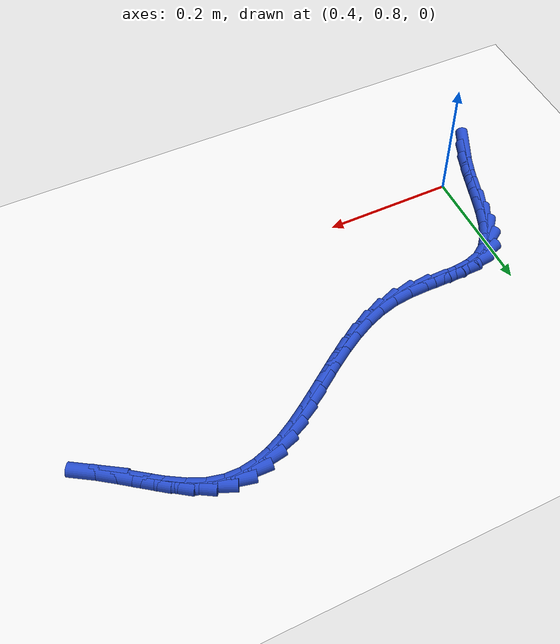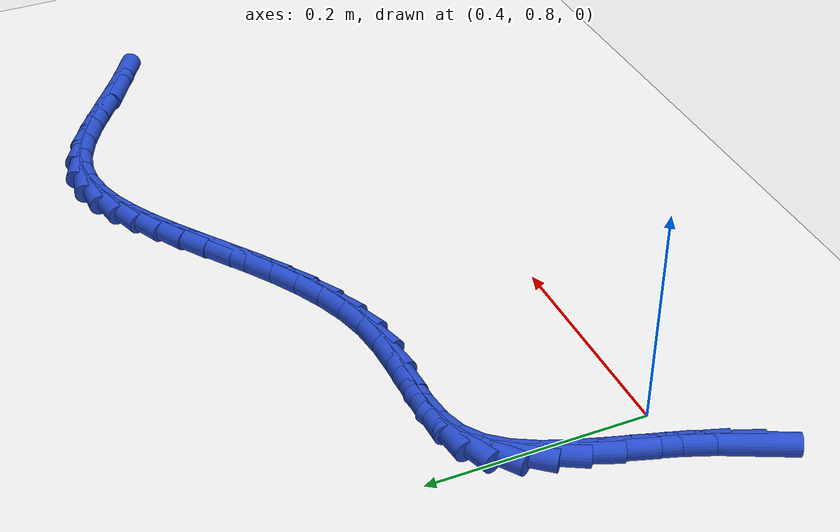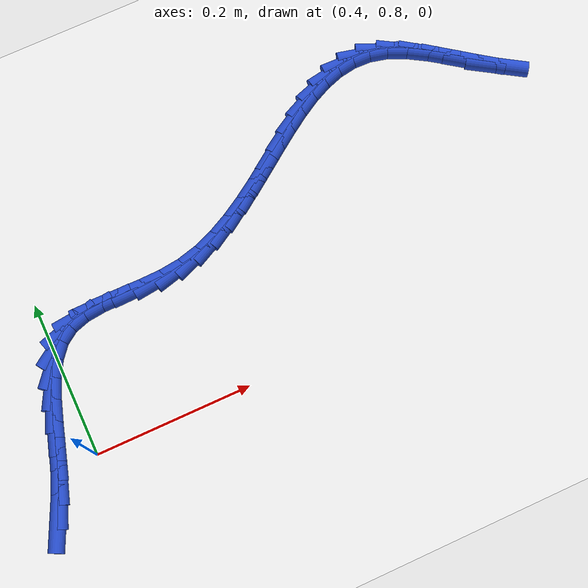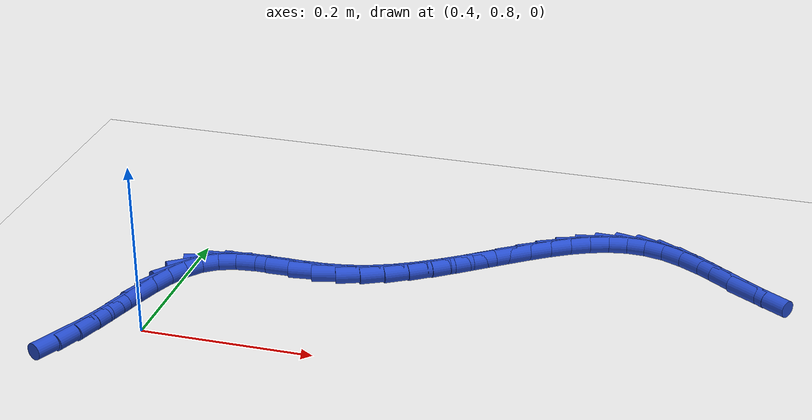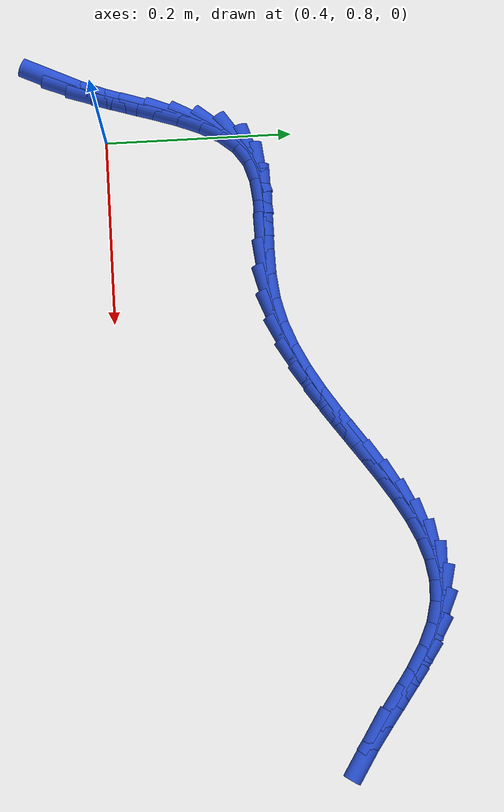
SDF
<sdf version="1.6">
 <world name="default">
  <model name="ground_plane">
   <static>1</static>
   <link name="link">
    <collision name="collision">
     <geometry><plane><normal>0 0 1</normal><size>100 100</size></plane></geometry>
     <surface><friction><ode><mu>100</mu><mu2>50</mu2></ode></friction></surface>
    </collision>
    <visual name="visual">
     <cast_shadows>0</cast_shadows>
     <geometry><plane><normal>0 0 1</normal><size>100 100</size></plane></geometry>
     <material>
      <script><uri>file://media/materials/scripts/gazebo.material</uri><name>Gazebo/WhiteGlow</name></script>
     </material>
    </visual>
   </link>
  </model>
  <model name="line">
   <link name="link_33">
    <pose>0.329873318205276 0.7486365363637981 0.01 0 1.57 1.1284688029731784</pose>
    <collision name="collision">
     <geometry><cylinder><radius>0.01</radius><length>0.08</length></cylinder></geometry>
    </collision>
    <visual name="visual">
     <material>
      <script><name>Gazebo/Blue</name><uri>file://media/materials/scripts/gazebo.material</uri></script>
     </material>
     <geometry><cylinder><radius>0.01</radius><length>0.08</length></cylinder></geometry>
    </visual>
   </link>
   <link name="link_34">
    <pose>0.3415156261085445 0.7732177090099589 0.01 0 1.57 1.197690654093386</pose>
    <collision name="collision">
     <geometry><cylinder><radius>0.01</radius><length>0.08</length></cylinder></geometry>
    </collision>
    <visual name="visual">
     <material>
      <script><name>Gazebo/Blue</name><uri>file://media/materials/scripts/gazebo.material</uri></script>
     </material>
     <geometry><cylinder><radius>0.01</radius><length>0.08</length></cylinder></geometry>
    </visual>
   </link>
   <link name="link_35">
    <pose>0.35171942012218216 0.7992850104737067 0.01 0 1.57 1.2533651907833483</pose>
    <collision name="collision">
     <geometry><cylinder><radius>0.01</radius><length>0.08</length></cylinder></geometry>
    </collision>
    <visual name="visual">
     <material>
      <script><name>Gazebo/Blue</name><uri>file://media/materials/scripts/gazebo.material</uri></script>
     </material>
     <geometry><cylinder><radius>0.01</radius><length>0.08</length></cylinder></geometry>
    </visual>
   </link>
   <link name="link_36">
    <pose>0.36067110237499256 0.826531796535264 0.01 0 1.57 1.2722899167853536</pose>
    <collision name="collision">
     <geometry><cylinder><radius>0.01</radius><length>0.08</length></cylinder></geometry>
    </collision>
    <visual name="visual">
     <material>
      <script><name>Gazebo/Blue</name><uri>file://media/materials/scripts/gazebo.material</uri></script>
     </material>
     <geometry><cylinder><radius>0.01</radius><length>0.08</length></cylinder></geometry>
    </visual>
   </link>
   <link name="link_37">
    <pose>0.3691043083008502 0.853938986598863 0.01 0 1.57 1.2536323393062092</pose>
    <collision name="collision">
     <geometry><cylinder><radius>0.01</radius><length>0.08</length></cylinder></geometry>
    </collision>
    <visual name="visual">
     <material>
      <script><name>Gazebo/Blue</name><uri>file://media/materials/scripts/gazebo.material</uri></script>
     </material>
     <geometry><cylinder><radius>0.01</radius><length>0.08</length></cylinder></geometry>
    </visual>
   </link>
   <link name="link_38">
    <pose>0.3777989475128677 0.8804272562782846 0.01 0 1.57 1.1924047636396597</pose>
    <collision name="collision">
     <geometry><cylinder><radius>0.01</radius><length>0.08</length></cylinder></geometry>
    </collision>
    <visual name="visual">
     <material>
      <script><name>Gazebo/Blue</name><uri>file://media/materials/scripts/gazebo.material</uri></script>
     </material>
     <geometry><cylinder><radius>0.01</radius><length>0.08</length></cylinder></geometry>
    </visual>
   </link>
   <link name="link_39">
    <pose>0.38753492962415753 0.9049172811873103 0.01 0 1.57 1.0758616461413353</pose>
    <collision name="collision">
     <geometry><cylinder><radius>0.01</radius><length>0.08</length></cylinder></geometry>
    </collision>
    <visual name="visual">
     <material>
      <script><name>Gazebo/Blue</name><uri>file://media/materials/scripts/gazebo.material</uri></script>
     </material>
     <geometry><cylinder><radius>0.01</radius><length>0.08</length></cylinder></geometry>
    </visual>
   </link>
   <link name="link_40">
    <pose>0.39909216424783245 0.9263297369397216 0.01 0 1.57 0.8836725762204143</pose>
    <collision name="collision">
     <geometry><cylinder><radius>0.01</radius><length>0.08</length></cylinder></geometry>
    </collision>
    <visual name="visual">
     <material>
      <script><name>Gazebo/Blue</name><uri>file://media/materials/scripts/gazebo.material</uri></script>
     </material>
     <geometry><cylinder><radius>0.01</radius><length>0.08</length></cylinder></geometry>
    </visual>
   </link>
   <link name="link_41">
    <pose>0.4132505609970051 0.9435852991492997 0.01 0 1.57 0.6012549065101921</pose>
    <collision name="collision">
     <geometry><cylinder><radius>0.01</radius><length>0.08</length></cylinder></geometry>
    </collision>
    <visual name="visual">
     <material>
      <script><name>Gazebo/Blue</name><uri>file://media/materials/scripts/gazebo.material</uri></script>
     </material>
     <geometry><cylinder><radius>0.01</radius><length>0.08</length></cylinder></geometry>
    </visual>
   </link>
   <link name="link_42">
    <pose>0.4307848259505046 0.9556134656059172 0.01 0 1.57 0.30317155262397594</pose>
    <collision name="collision">
     <geometry><cylinder><radius>0.01</radius><length>0.08</length></cylinder></geometry>
    </collision>
    <visual name="visual">
     <material>
      <script><name>Gazebo/Blue</name><uri>file://media/materials/scripts/gazebo.material</uri></script>
     </material>
     <geometry><cylinder><radius>0.01</radius><length>0.08</length></cylinder></geometry>
    </visual>
   </link>
   <link name="link_43">
    <pose>0.4519452901344115 0.9622327700510799 0.01 0 1.57 0.11035234905984537</pose>
    <collision name="collision">
     <geometry><cylinder><radius>0.01</radius><length>0.08</length></cylinder></geometry>
    </collision>
    <visual name="visual">
     <material>
      <script><name>Gazebo/Blue</name><uri>file://media/materials/scripts/gazebo.material</uri></script>
     </material>
     <geometry><cylinder><radius>0.01</radius><length>0.08</length></cylinder></geometry>
    </visual>
   </link>
   <link name="link_44">
    <pose>0.47601607744643054 0.9648998731153317 0.01 0 1.57 0.01330063873549448</pose>
    <collision name="collision">
     <geometry><cylinder><radius>0.01</radius><length>0.08</length></cylinder></geometry>
    </collision>
    <visual name="visual">
     <material>
      <script><name>Gazebo/Blue</name><uri>file://media/materials/scripts/gazebo.material</uri></script>
     </material>
     <geometry><cylinder><radius>0.01</radius><length>0.08</length></cylinder></geometry>
    </visual>
   </link>
   <link name="link_45">
    <pose>0.5021772558047813 0.9652478540178977 0.01 0 1.57 -0.012323177175495761</pose>
    <collision name="collision">
     <geometry><cylinder><radius>0.01</radius><length>0.08</length></cylinder></geometry>
    </collision>
    <visual name="visual">
     <material>
      <script><name>Gazebo/Blue</name><uri>file://media/materials/scripts/gazebo.material</uri></script>
     </material>
     <geometry><cylinder><radius>0.01</radius><length>0.08</length></cylinder></geometry>
    </visual>
   </link>
   <link name="link_46">
    <pose>0.5296088931276831 0.9649097919780015 0.01 0 1.57 0.021837524062655555</pose>
    <collision name="collision">
     <geometry><cylinder><radius>0.01</radius><length>0.08</length></cylinder></geometry>
    </collision>
    <visual name="visual">
     <material>
      <script><name>Gazebo/Blue</name><uri>file://media/materials/scripts/gazebo.material</uri></script>
     </material>
     <geometry><cylinder><radius>0.01</radius><length>0.08</length></cylinder></geometry>
    </visual>
   </link>
   <link name="link_47">
    <pose>0.5574910573333552 0.965518766214868 0.01 0 1.57 0.11528833036657696</pose>
    <collision name="collision">
     <geometry><cylinder><radius>0.01</radius><length>0.08</length></cylinder></geometry>
    </collision>
    <visual name="visual">
     <material>
      <script><name>Gazebo/Blue</name><uri>file://media/materials/scripts/gazebo.material</uri></script>
     </material>
     <geometry><cylinder><radius>0.01</radius><length>0.08</length></cylinder></geometry>
    </visual>
   </link>
   <link name="link_48">
    <pose>0.5850050132265947 0.9687049329804212 0.01 0 1.57 0.24897350602909968</pose>
    <collision name="collision">
     <geometry><cylinder><radius>0.01</radius><length>0.08</length></cylinder></geometry>
    </collision>
    <visual name="visual">
     <material>
      <script><name>Gazebo/Blue</name><uri>file://media/materials/scripts/gazebo.material</uri></script>
     </material>
     <geometry><cylinder><radius>0.01</radius><length>0.08</length></cylinder></geometry>
    </visual>
   </link>
   <link name="link_49">
    <pose>0.6115915964908748 0.9754645395123885 0.01 0 1.57 0.3681971482688158</pose>
    <collision name="collision">
     <geometry><cylinder><radius>0.01</radius><length>0.08</length></cylinder></geometry>
    </collision>
    <visual name="visual">
     <material>
      <script><name>Gazebo/Blue</name><uri>file://media/materials/scripts/gazebo.material</uri></script>
     </material>
     <geometry><cylinder><radius>0.01</radius><length>0.08</length></cylinder></geometry>
    </visual>
   </link>
   <link name="link_50">
    <pose>0.6372736697629611 0.9853724404251105 0.01 0 1.57 0.4635773042794441</pose>
    <collision name="collision">
     <geometry><cylinder><radius>0.01</radius><length>0.08</length></cylinder></geometry>
    </collision>
    <visual name="visual">
     <material>
      <script><name>Gazebo/Blue</name><uri>file://media/materials/scripts/gazebo.material</uri></script>
     </material>
     <geometry><cylinder><radius>0.01</radius><length>0.08</length></cylinder></geometry>
    </visual>
   </link>
   <link name="link_51">
    <pose>0.6621532975997116 0.9978100679762099 0.01 0 1.57 0.5355775466585364</pose>
    <collision name="collision">
     <geometry><cylinder><radius>0.01</radius><length>0.08</length></cylinder></geometry>
    </collision>
    <visual name="visual">
     <material>
      <script><name>Gazebo/Blue</name><uri>file://media/materials/scripts/gazebo.material</uri></script>
     </material>
     <geometry><cylinder><radius>0.01</radius><length>0.08</length></cylinder></geometry>
    </visual>
   </link>
   <link name="link_52">
    <pose>0.6863325445579858 1.0121588544233093 0.01 0 1.57 0.5856725200768663</pose>
    <collision name="collision">
     <geometry><cylinder><radius>0.01</radius><length>0.08</length></cylinder></geometry>
    </collision>
    <visual name="visual">
     <material>
      <script><name>Gazebo/Blue</name><uri>file://media/materials/scripts/gazebo.material</uri></script>
     </material>
     <geometry><cylinder><radius>0.01</radius><length>0.08</length></cylinder></geometry>
    </visual>
   </link>
   <link name="link_53">
    <pose>0.7099134751946414 1.0278002320240311 0.01 0 1.57 0.6152506030439742</pose>
    <collision name="collision">
     <geometry><cylinder><radius>0.01</radius><length>0.08</length></cylinder></geometry>
    </collision>
    <visual name="visual">
     <material>
      <script><name>Gazebo/Blue</name><uri>file://media/materials/scripts/gazebo.material</uri></script>
     </material>
     <geometry><cylinder><radius>0.01</radius><length>0.08</length></cylinder></geometry>
    </visual>
   </link>
   <link name="link_54">
    <pose>0.7329981540665376 1.0441156330359982 0.01 0 1.57 0.625000579297981</pose>
    <collision name="collision">
     <geometry><cylinder><radius>0.01</radius><length>0.08</length></cylinder></geometry>
    </collision>
    <visual name="visual">
     <material>
      <script><name>Gazebo/Blue</name><uri>file://media/materials/scripts/gazebo.material</uri></script>
     </material>
     <geometry><cylinder><radius>0.01</radius><length>0.08</length></cylinder></geometry>
    </visual>
   </link>
   <link name="link_55">
    <pose>0.7556886457305326 1.0604864897168333 0.01 0 1.57 0.6145774605897407</pose>
    <collision name="collision">
     <geometry><cylinder><radius>0.01</radius><length>0.08</length></cylinder></geometry>
    </collision>
    <visual name="visual">
     <material>
      <script><name>Gazebo/Blue</name><uri>file://media/materials/scripts/gazebo.material</uri></script>
     </material>
     <geometry><cylinder><radius>0.01</radius><length>0.08</length></cylinder></geometry>
    </visual>
   </link>
   <link name="link_56">
    <pose>0.7780870147434851 1.0762942343241588 0.01 0 1.57 0.5823868515626601</pose>
    <collision name="collision">
     <geometry><cylinder><radius>0.01</radius><length>0.08</length></cylinder></geometry>
    </collision>
    <visual name="visual">
     <material>
      <script><name>Gazebo/Blue</name><uri>file://media/materials/scripts/gazebo.material</uri></script>
     </material>
     <geometry><cylinder><radius>0.01</radius><length>0.08</length></cylinder></geometry>
    </visual>
   </link>
   <link name="link_57">
    <pose>0.8002953256622541 1.0909202991155982 0.01 0 1.57 0.5254495938514904</pose>
    <collision name="collision">
     <geometry><cylinder><radius>0.01</radius><length>0.08</length></cylinder></geometry>
    </collision>
    <visual name="visual">
     <material>
      <script><name>Gazebo/Blue</name><uri>file://media/materials/scripts/gazebo.material</uri></script>
     </material>
     <geometry><cylinder><radius>0.01</radius><length>0.08</length></cylinder></geometry>
    </visual>
   </link>
   <link name="link_58">
    <pose>0.8224156430436974 1.103746116348773 0.01 0 1.57 0.4395029515785107</pose>
    <collision name="collision">
     <geometry><cylinder><radius>0.01</radius><length>0.08</length></cylinder></geometry>
    </collision>
    <visual name="visual">
     <material>
      <script><name>Gazebo/Blue</name><uri>file://media/materials/scripts/gazebo.material</uri></script>
     </material>
     <geometry><cylinder><radius>0.01</radius><length>0.08</length></cylinder></geometry>
    </visual>
   </link>
   <link name="link_59">
    <pose>0.8445500314446743 1.1141531182813067 0.01 0 1.57 0.31983926378259636</pose>
    <collision name="collision">
     <geometry><cylinder><radius>0.01</radius><length>0.08</length></cylinder></geometry>
    </collision>
    <visual name="visual">
     <material>
      <script><name>Gazebo/Blue</name><uri>file://media/materials/scripts/gazebo.material</uri></script>
     </material>
     <geometry><cylinder><radius>0.01</radius><length>0.08</length></cylinder></geometry>
    </visual>
   </link>
   <link name="link_60">
    <pose>0.8668005554220428 1.1215227371708214 0.01 0 1.57 0.16380080513344852</pose>
    <collision name="collision">
     <geometry><cylinder><radius>0.01</radius><length>0.08</length></cylinder></geometry>
    </collision>
    <visual name="visual">
     <material>
      <script><name>Gazebo/Blue</name><uri>file://media/materials/scripts/gazebo.material</uri></script>
     </material>
     <geometry><cylinder><radius>0.01</radius><length>0.08</length></cylinder></geometry>
    </visual>
   </link>
   <link name="link_61">
    <pose>0.8892692795326624 1.1252364052749406 0.01 0 1.57 -0.024605621492440968</pose>
    <collision name="collision">
     <geometry><cylinder><radius>0.01</radius><length>0.08</length></cylinder></geometry>
    </collision>
    <visual name="visual">
     <material>
      <script><name>Gazebo/Blue</name><uri>file://media/materials/scripts/gazebo.material</uri></script>
     </material>
     <geometry><cylinder><radius>0.01</radius><length>0.08</length></cylinder></geometry>
    </visual>
   </link>
   <link name="link_62">
    <pose>0.9120582683333909 1.1246755548512861 0.01 0 1.57 -0.23077435446148625</pose>
    <collision name="collision">
     <geometry><cylinder><radius>0.01</radius><length>0.08</length></cylinder></geometry>
    </collision>
    <visual name="visual">
     <material>
      <script><name>Gazebo/Blue</name><uri>file://media/materials/scripts/gazebo.material</uri></script>
     </material>
     <geometry><cylinder><radius>0.01</radius><length>0.08</length></cylinder></geometry>
    </visual>
   </link>
   <link name="link_63">
    <pose>0.9352695578027016 1.119221822905175 0.01 0 1.57 -0.41806746413932455</pose>
    <collision name="collision">
     <geometry><cylinder><radius>0.01</radius><length>0.08</length></cylinder></geometry>
    </collision>
    <visual name="visual">
     <material>
      <script><name>Gazebo/Blue</name><uri>file://media/materials/scripts/gazebo.material</uri></script>
     </material>
     <geometry><cylinder><radius>0.01</radius><length>0.08</length></cylinder></geometry>
    </visual>
   </link>
   <link name="link_64">
    <pose>0.958942645639854 1.1087048972412237 0.01 0 1.57 -0.5393468073446842</pose>
    <collision name="collision">
     <geometry><cylinder><radius>0.01</radius><length>0.08</length></cylinder></geometry>
    </collision>
    <visual name="visual">
     <material>
      <script><name>Gazebo/Blue</name><uri>file://media/materials/scripts/gazebo.material</uri></script>
     </material>
     <geometry><cylinder><radius>0.01</radius><length>0.08</length></cylinder></geometry>
    </visual>
   </link>
   <link name="link_65">
    <pose>0.9829219231563014 1.094352290709821 0.01 0 1.57 -0.6058230697008173</pose>
    <collision name="collision">
     <geometry><cylinder><radius>0.01</radius><length>0.08</length></cylinder></geometry>
    </collision>
    <visual name="visual">
     <material>
      <script><name>Gazebo/Blue</name><uri>file://media/materials/scripts/gazebo.material</uri></script>
     </material>
     <geometry><cylinder><radius>0.01</radius><length>0.08</length></cylinder></geometry>
    </visual>
   </link>
   <link name="link_66">
    <pose>1.0070138398468274 1.0776633474541317 0.01 0 1.57 -0.6305207519428306</pose>
    <collision name="collision">
     <geometry><cylinder><radius>0.01</radius><length>0.08</length></cylinder></geometry>
    </collision>
    <visual name="visual">
     <material>
      <script><name>Gazebo/Blue</name><uri>file://media/materials/scripts/gazebo.material</uri></script>
     </material>
     <geometry><cylinder><radius>0.01</radius><length>0.08</length></cylinder></geometry>
    </visual>
   </link>
   <link name="link_67">
    <pose>1.0310248452062123 1.0601374116173181 0.01 0 1.57 -0.6177038045477371</pose>
    <collision name="collision">
     <geometry><cylinder><radius>0.01</radius><length>0.08</length></cylinder></geometry>
    </collision>
    <visual name="visual">
     <material>
      <script><name>Gazebo/Blue</name><uri>file://media/materials/scripts/gazebo.material</uri></script>
     </material>
     <geometry><cylinder><radius>0.01</radius><length>0.08</length></cylinder></geometry>
    </visual>
   </link>
   <link name="link_68">
    <pose>1.05476138872924 1.0432738273425448 0.01 0 1.57 -0.5634997766094578</pose>
    <collision name="collision">
     <geometry><cylinder><radius>0.01</radius><length>0.08</length></cylinder></geometry>
    </collision>
    <visual name="visual">
     <material>
      <script><name>Gazebo/Blue</name><uri>file://media/materials/scripts/gazebo.material</uri></script>
     </material>
     <geometry><cylinder><radius>0.01</radius><length>0.08</length></cylinder></geometry>
    </visual>
   </link>
  </model>
 </world>
</sdf>
